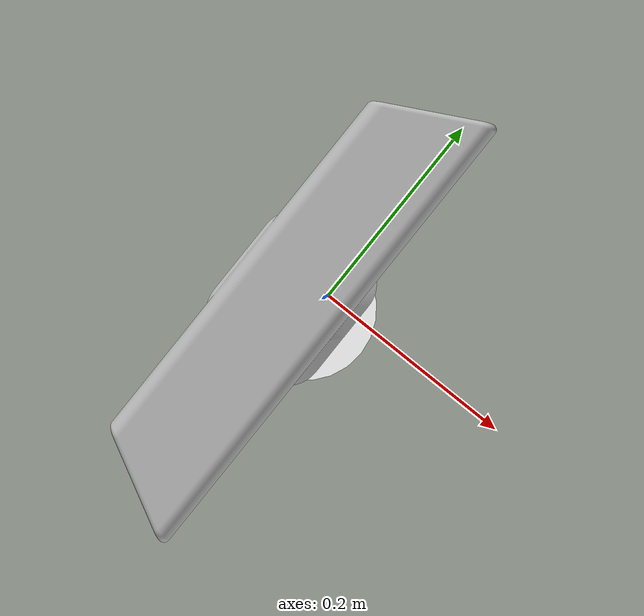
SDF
<?xml version='1.0'?>
<sdf version='1.6'>
  <model name='kinect_piller_v2'>
    <link name='kinect'>
      <pose frame=''>0.02131 0 0.542279 0 -0 0</pose>
      <inertial>
        <mass>0.1</mass>
        <inertia>
          <ixx>1</ixx>
          <ixy>0</ixy>
          <ixz>0</ixz>
          <iyy>1</iyy>
          <iyz>0</iyz>
          <izz>1</izz>
        </inertia>
        <pose frame=''>0 0 0 0 -0 0</pose>
      </inertial>
      <self_collide>0</self_collide>
      <kinematic>0</kinematic>
      <sensor name='camera' type='depth'>
        <update_rate>20</update_rate>
        <camera name='__default__'>
          <horizontal_fov>1.0472</horizontal_fov>
          <image>
            <width>640</width>
            <height>480</height>
            <format>R8G8B8</format>
          </image>
          <clip>
            <near>0.05</near>
            <far>3</far>
          </clip>
        </camera>
        <plugin name='camera_plugin' filename='libgazebo_ros_openni_kinect.so'>
          <baseline>0.2</baseline>
          <alwaysOn>true</alwaysOn>
          <updateRate>0.0</updateRate>
          <cameraName>camera_ir</cameraName>
          <imageTopicName>/camera/depth/image_raw</imageTopicName>
          <cameraInfoTopicName>/camera/depth/camera_info</cameraInfoTopicName>
          <depthImageTopicName>/camera/depth/image_raw</depthImageTopicName>
          <depthImageInfoTopicName>/camera/depth/camera_info</depthImageInfoTopicName>
          <pointCloudTopicName>/camera/depth/points</pointCloudTopicName>
          <frameName>camera_link</frameName>
          <pointCloudCutoff>0.05</pointCloudCutoff>
          <distortionK1>0</distortionK1>
          <distortionK2>0</distortionK2>
          <distortionK3>0</distortionK3>
          <distortionT1>0</distortionT1>
          <distortionT2>0</distortionT2>
          <CxPrime>0</CxPrime>
          <Cx>0</Cx>
          <Cy>0</Cy>
          <focalLength>0</focalLength>
          <hackBaseline>0</hackBaseline>
          <robotNamespace>/</robotNamespace>
        </plugin>
      </sensor>
      <gravity>1</gravity>
      <visual name='visual'>
        <geometry>
          <mesh>
            <uri>model://kinect/meshes/kinect.dae</uri>
          </mesh>
        </geometry>
        <pose frame=''>0 0 0 0 -0 0</pose>
        <cast_shadows>1</cast_shadows>
        <transparency>0</transparency>
        <material>
          <shader type='vertex'>
            <normal_map>__default__</normal_map>
          </shader>
        </material>
      </visual>
      <collision name='collision'>
        <laser_retro>0</laser_retro>
        <max_contacts>10</max_contacts>
        <pose frame=''>0 0 0 0 -0 0</pose>
        <geometry>
          <box>
            <size>0.073 0.276 0.072</size>
          </box>
        </geometry>
        <surface>
          <friction>
            <ode>
              <mu>1</mu>
              <mu2>1</mu2>
              <fdir1>0 0 0</fdir1>
              <slip1>0</slip1>
              <slip2>0</slip2>
            </ode>
            <torsional>
              <coefficient>1</coefficient>
              <patch_radius>0</patch_radius>
              <surface_radius>0</surface_radius>
              <use_patch_radius>1</use_patch_radius>
              <ode>
                <slip>0</slip>
              </ode>
            </torsional>
          </friction>
          <bounce>
            <restitution_coefficient>0</restitution_coefficient>
            <threshold>1e+06</threshold>
          </bounce>
          <contact>
            <collide_without_contact>0</collide_without_contact>
            <collide_without_contact_bitmask>1</collide_without_contact_bitmask>
            <collide_bitmask>1</collide_bitmask>
            <ode>
              <soft_cfm>0</soft_cfm>
              <soft_erp>0.2</soft_erp>
              <kp>1e+13</kp>
              <kd>1</kd>
              <max_vel>0.01</max_vel>
              <min_depth>0</min_depth>
            </ode>
            <bullet>
              <split_impulse>1</split_impulse>
              <split_impulse_penetration_threshold>-0.01</split_impulse_penetration_threshold>
              <soft_cfm>0</soft_cfm>
              <soft_erp>0.2</soft_erp>
              <kp>1e+13</kp>
              <kd>1</kd>
            </bullet>
          </contact>
        </surface>
      </collision>
    </link>
    <link name='kinect_pilar'>
      <pose frame=''>0 0 0 0 -0 0</pose>
      <inertial>
        <mass>1</mass>
        <inertia>
          <ixx>0.145833</ixx>
          <ixy>0</ixy>
          <ixz>0</ixz>
          <iyy>0.145833</iyy>
          <iyz>0</iyz>
          <izz>0.125</izz>
        </inertia>
      </inertial>
      <self_collide>0</self_collide>
      <kinematic>0</kinematic>
      <visual name='visual'>
        <geometry>
          <cylinder>
            <radius>0.04</radius>
            <length>1</length>
          </cylinder>
        </geometry>
        <material>
          <script>
            <uri>file://media/materials/scripts/gazebo.material</uri>
            <name>Gazebo/Metal</name>
          </script>
          <ambient>1 1 1 1</ambient>
        </material>
        <pose frame=''>0 0 0 0 -0 0</pose>
        <cast_shadows>1</cast_shadows>
        <transparency>0</transparency>
      </visual>
      <collision name='collision'>
        <laser_retro>0</laser_retro>
        <max_contacts>10</max_contacts>
        <pose frame=''>0 0 0 0 -0 0</pose>
        <geometry>
          <cylinder>
            <radius>0.04</radius>
            <length>1</length>
          </cylinder>
        </geometry>
        <surface>
          <friction>
            <ode>
              <mu>1</mu>
              <mu2>1</mu2>
              <fdir1>0 0 0</fdir1>
              <slip1>0</slip1>
              <slip2>0</slip2>
            </ode>
            <torsional>
              <coefficient>1</coefficient>
              <patch_radius>0</patch_radius>
              <surface_radius>0</surface_radius>
              <use_patch_radius>1</use_patch_radius>
              <ode>
                <slip>0</slip>
              </ode>
            </torsional>
          </friction>
          <bounce>
            <restitution_coefficient>0</restitution_coefficient>
            <threshold>1e+06</threshold>
          </bounce>
          <contact>
            <collide_without_contact>0</collide_without_contact>
            <collide_without_contact_bitmask>1</collide_without_contact_bitmask>
            <collide_bitmask>1</collide_bitmask>
            <ode>
              <soft_cfm>0</soft_cfm>
              <soft_erp>0.2</soft_erp>
              <kp>1e+13</kp>
              <kd>1</kd>
              <max_vel>0.01</max_vel>
              <min_depth>0</min_depth>
            </ode>
            <bullet>
              <split_impulse>1</split_impulse>
              <split_impulse_penetration_threshold>-0.01</split_impulse_penetration_threshold>
              <soft_cfm>0</soft_cfm>
              <soft_erp>0.2</soft_erp>
              <kp>1e+13</kp>
              <kd>1</kd>
            </bullet>
          </contact>
        </surface>
      </collision>
    </link>
    <static>1</static>
    <allow_auto_disable>1</allow_auto_disable>
  </model>
</sdf>
